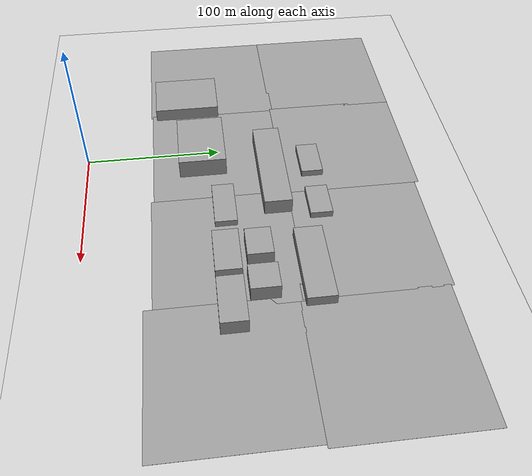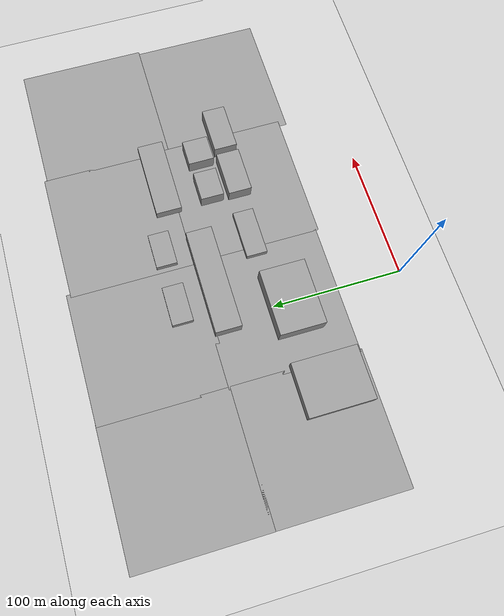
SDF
<sdf version="1.6">
 <world name="default">
  <model name="ground_plane">
   <static>1</static>
   <link name="link">
    <collision name="collision">
     <geometry><plane><normal>0 0 1</normal><size>100 100</size></plane></geometry>
     <surface><friction><ode><mu>100</mu><mu2>50</mu2></ode></friction></surface>
    </collision>
    <visual name="visual">
     <cast_shadows>0</cast_shadows>
     <geometry><plane><normal>0 0 1</normal><size>100 100</size></plane></geometry>
     <material>
      <script><uri>file://media/materials/scripts/gazebo.material</uri><name>Gazebo/Grey</name></script>
     </material>
    </visual>
   </link>
  </model>
  <model name="library_kait">
   <link name="link_0">
    <inertial>
     <mass>1</mass>
     <inertia>
      <ixx>0.166667</ixx>
      <ixy>0</ixy>
      <ixz>0</ixz>
      <iyy>0.166667</iyy>
      <iyz>0</iyz>
      <izz>0.166667</izz>
     </inertia>
    </inertial>
    <visual name="visual">
     <pose>0 0 7.5 0 -0 0</pose>
     <geometry><box><size>50 35 15</size></box></geometry>
     <material>
      <lighting>1</lighting>
      <script><uri>file://media/materials/scripts/gazebo.material</uri><name>Gazebo/Grey</name></script>
      <shader type="vertex"><normal_map>__default__</normal_map></shader>
      <ambient>0.3 0.3 0.3 1</ambient>
      <diffuse>0.7 0.7 0.7 1</diffuse>
      <specular>0.01 0.01 0.01 1</specular>
      <emissive>0 0 0 1</emissive>
     </material>
    </visual>
    <collision name="collision">
     <geometry><box><size>1 1 1</size></box></geometry>
     <surface>
      <friction>
       <ode><mu>1</mu><mu2>1</mu2><fdir1>0 0 0</fdir1><slip1>0</slip1><slip2>0</slip2></ode>
       <torsional>
        <coefficient>1</coefficient>
        <patch_radius>0</patch_radius>
        <surface_radius>0</surface_radius>
        <use_patch_radius>1</use_patch_radius>
        <ode><slip>0</slip></ode>
       </torsional>
      </friction>
      <bounce><restitution_coefficient>0</restitution_coefficient><threshold>1e+06</threshold></bounce>
      <contact>
       <collide_without_contact>0</collide_without_contact>
       <collide_without_contact_bitmask>1</collide_without_contact_bitmask>
       <collide_bitmask>1</collide_bitmask>
       <ode>
        <soft_cfm>0</soft_cfm>
        <soft_erp>0.2</soft_erp>
        <kp>1e+13</kp>
        <kd>1</kd>
        <max_vel>0.01</max_vel>
        <min_depth>0</min_depth>
       </ode>
       <bullet>
        <split_impulse>1</split_impulse>
        <split_impulse_penetration_threshold>-0.01</split_impulse_penetration_threshold>
        <soft_cfm>0</soft_cfm>
        <soft_erp>0.2</soft_erp>
        <kp>1e+13</kp>
        <kd>1</kd>
       </bullet>
      </contact>
     </surface>
    </collision>
   </link>
   <static>0</static>
   <pose>0 87 0 0 -0 0</pose>
  </model>
  <model name="vaio">
   <link name="link_0">
    <inertial>
     <mass>1</mass>
     <inertia>
      <ixx>0.166667</ixx>
      <ixy>0</ixy>
      <ixz>0</ixz>
      <iyy>0.166667</iyy>
      <iyz>0</iyz>
      <izz>0.166667</izz>
     </inertia>
    </inertial>
    <pose>-4e-06 0 0 0 -0 0</pose>
    <visual name="visual">
     <pose>0 0 5 0 -0 0</pose>
     <geometry><box><size>40 50 10</size></box></geometry>
     <material>
      <lighting>1</lighting>
      <script><uri>file://media/materials/scripts/gazebo.material</uri><name>Gazebo/Grey</name></script>
      <shader type="vertex"><normal_map>__default__</normal_map></shader>
      <ambient>0.3 0.3 0.3 1</ambient>
      <diffuse>0.7 0.7 0.7 1</diffuse>
      <specular>0.01 0.01 0.01 1</specular>
      <emissive>0 0 0 1</emissive>
     </material>
    </visual>
    <collision name="collision">
     <geometry><box><size>1 1 1</size></box></geometry>
     <surface>
      <friction>
       <ode><mu>1</mu><mu2>1</mu2><fdir1>0 0 0</fdir1><slip1>0</slip1><slip2>0</slip2></ode>
       <torsional>
        <coefficient>1</coefficient>
        <patch_radius>0</patch_radius>
        <surface_radius>0</surface_radius>
        <use_patch_radius>1</use_patch_radius>
        <ode><slip>0</slip></ode>
       </torsional>
      </friction>
      <bounce><restitution_coefficient>0</restitution_coefficient><threshold>1e+06</threshold></bounce>
      <contact>
       <collide_without_contact>0</collide_without_contact>
       <collide_without_contact_bitmask>1</collide_without_contact_bitmask>
       <collide_bitmask>1</collide_bitmask>
       <ode>
        <soft_cfm>0</soft_cfm>
        <soft_erp>0.2</soft_erp>
        <kp>1e+13</kp>
        <kd>1</kd>
        <max_vel>0.01</max_vel>
        <min_depth>0</min_depth>
       </ode>
       <bullet>
        <split_impulse>1</split_impulse>
        <split_impulse_penetration_threshold>-0.01</split_impulse_penetration_threshold>
        <soft_cfm>0</soft_cfm>
        <soft_erp>0.2</soft_erp>
        <kp>1e+13</kp>
        <kd>1</kd>
       </bullet>
      </contact>
     </surface>
    </collision>
   </link>
   <static>0</static>
   <pose>-65 78 0 0 -0 0</pose>
  </model>
  <model name="kait_C2">
   <link name="link_0">
    <inertial>
     <mass>1</mass>
     <inertia>
      <ixx>0.166667</ixx>
      <ixy>0</ixy>
      <ixz>0</ixz>
      <iyy>0.166667</iyy>
      <iyz>0</iyz>
      <izz>0.166667</izz>
     </inertia>
    </inertial>
    <pose>3.5e-05 -0.000325 0 0 -0 0</pose>
    <visual name="visual">
     <pose>0 0 6 0 -0 0</pose>
     <geometry><box><size>80 20 12</size></box></geometry>
     <material>
      <lighting>1</lighting>
      <script><uri>file://media/materials/scripts/gazebo.material</uri><name>Gazebo/Grey</name></script>
      <shader type="vertex"><normal_map>__default__</normal_map></shader>
      <ambient>0.3 0.3 0.3 1</ambient>
      <diffuse>0.7 0.7 0.7 1</diffuse>
      <specular>0.01 0.01 0.01 1</specular>
      <emissive>0 0 0 1</emissive>
     </material>
    </visual>
    <collision name="collision">
     <geometry><box><size>1 1 1</size></box></geometry>
     <surface>
      <friction>
       <ode><mu>1</mu><mu2>1</mu2><fdir1>0 0 0</fdir1><slip1>0</slip1><slip2>0</slip2></ode>
       <torsional>
        <coefficient>1</coefficient>
        <patch_radius>0</patch_radius>
        <surface_radius>0</surface_radius>
        <use_patch_radius>1</use_patch_radius>
        <ode><slip>0</slip></ode>
       </torsional>
      </friction>
      <bounce><restitution_coefficient>0</restitution_coefficient><threshold>1e+06</threshold></bounce>
      <contact>
       <collide_without_contact>0</collide_without_contact>
       <collide_without_contact_bitmask>1</collide_without_contact_bitmask>
       <collide_bitmask>1</collide_bitmask>
       <ode>
        <soft_cfm>0</soft_cfm>
        <soft_erp>0.2</soft_erp>
        <kp>1e+13</kp>
        <kd>1</kd>
        <max_vel>0.01</max_vel>
        <min_depth>0</min_depth>
       </ode>
       <bullet>
        <split_impulse>1</split_impulse>
        <split_impulse_penetration_threshold>-0.01</split_impulse_penetration_threshold>
        <soft_cfm>0</soft_cfm>
        <soft_erp>0.2</soft_erp>
        <kp>1e+13</kp>
        <kd>1</kd>
       </bullet>
      </contact>
     </surface>
    </collision>
   </link>
   <static>0</static>
   <pose>30 138 0 0 -0 0</pose>
  </model>
  <model name="kait_E6">
   <link name="link_1">
    <inertial>
     <mass>1</mass>
     <inertia>
      <ixx>0.166667</ixx>
      <ixy>0</ixy>
      <ixz>0</ixz>
      <iyy>0.166667</iyy>
      <iyz>0</iyz>
      <izz>0.166667</izz>
     </inertia>
    </inertial>
    <pose>2e-06 0 0 0 -0 0</pose>
    <visual name="visual">
     <pose>0 0 4 0 -0 0</pose>
     <geometry><box><size>60 20 8</size></box></geometry>
     <material>
      <lighting>1</lighting>
      <script><uri>file://media/materials/scripts/gazebo.material</uri><name>Gazebo/Grey</name></script>
      <shader type="vertex"><normal_map>__default__</normal_map></shader>
      <ambient>0.3 0.3 0.3 1</ambient>
      <diffuse>0.7 0.7 0.7 1</diffuse>
      <specular>0.01 0.01 0.01 1</specular>
      <emissive>0 0 0 1</emissive>
     </material>
    </visual>
    <collision name="collision">
     <geometry><box><size>1 1 1</size></box></geometry>
     <surface>
      <friction>
       <ode><mu>1</mu><mu2>1</mu2><fdir1>0 0 0</fdir1><slip1>0</slip1><slip2>0</slip2></ode>
       <torsional>
        <coefficient>1</coefficient>
        <patch_radius>0</patch_radius>
        <surface_radius>0</surface_radius>
        <use_patch_radius>1</use_patch_radius>
        <ode><slip>0</slip></ode>
       </torsional>
      </friction>
      <bounce><restitution_coefficient>0</restitution_coefficient><threshold>1e+06</threshold></bounce>
      <contact>
       <collide_without_contact>0</collide_without_contact>
       <collide_without_contact_bitmask>1</collide_without_contact_bitmask>
       <collide_bitmask>1</collide_bitmask>
       <ode>
        <soft_cfm>0</soft_cfm>
        <soft_erp>0.2</soft_erp>
        <kp>1e+13</kp>
        <kd>1</kd>
        <max_vel>0.01</max_vel>
        <min_depth>0</min_depth>
       </ode>
       <bullet>
        <split_impulse>1</split_impulse>
        <split_impulse_penetration_threshold>-0.01</split_impulse_penetration_threshold>
        <soft_cfm>0</soft_cfm>
        <soft_erp>0.2</soft_erp>
        <kp>1e+13</kp>
        <kd>1</kd>
       </bullet>
      </contact>
     </surface>
    </collision>
   </link>
   <static>0</static>
   <pose>123 155 0 0 -0 0</pose>
  </model>
  <model name="D5_kait">
   <link name="link_4">
    <inertial>
     <mass>1</mass>
     <inertia>
      <ixx>0.166667</ixx>
      <ixy>0</ixy>
      <ixz>0</ixz>
      <iyy>0.166667</iyy>
      <iyz>0</iyz>
      <izz>0.166667</izz>
     </inertia>
    </inertial>
    <pose>-1.1e-05 -1.1e-05 0 0 -0 0</pose>
    <visual name="visual">
     <pose>0 0 2.5 0 -0 0</pose>
     <geometry><box><size>37 16 5</size></box></geometry>
     <material>
      <lighting>1</lighting>
      <script><uri>file://media/materials/scripts/gazebo.material</uri><name>Gazebo/Grey</name></script>
      <shader type="vertex"><normal_map>__default__</normal_map></shader>
      <ambient>0.3 0.3 0.3 1</ambient>
      <diffuse>0.7 0.7 0.7 1</diffuse>
      <specular>0.01 0.01 0.01 1</specular>
      <emissive>0 0 0 1</emissive>
     </material>
    </visual>
    <collision name="collision">
     <geometry><box><size>1 1 1</size></box></geometry>
     <surface>
      <friction>
       <ode><mu>1</mu><mu2>1</mu2><fdir1>0 0 0</fdir1><slip1>0</slip1><slip2>0</slip2></ode>
       <torsional>
        <coefficient>1</coefficient>
        <patch_radius>0</patch_radius>
        <surface_radius>0</surface_radius>
        <use_patch_radius>1</use_patch_radius>
        <ode><slip>0</slip></ode>
       </torsional>
      </friction>
      <bounce><restitution_coefficient>0</restitution_coefficient><threshold>1e+06</threshold></bounce>
      <contact>
       <collide_without_contact>0</collide_without_contact>
       <collide_without_contact_bitmask>1</collide_without_contact_bitmask>
       <collide_bitmask>1</collide_bitmask>
       <ode>
        <soft_cfm>0</soft_cfm>
        <soft_erp>0.2</soft_erp>
        <kp>1e+13</kp>
        <kd>1</kd>
        <max_vel>0.01</max_vel>
        <min_depth>0</min_depth>
       </ode>
       <bullet>
        <split_impulse>1</split_impulse>
        <split_impulse_penetration_threshold>-0.01</split_impulse_penetration_threshold>
        <soft_cfm>0</soft_cfm>
        <soft_erp>0.2</soft_erp>
        <kp>1e+13</kp>
        <kd>1</kd>
       </bullet>
      </contact>
     </surface>
    </collision>
   </link>
   <static>0</static>
   <pose>60 100 0 0 -0 0</pose>
  </model>
  <model name="E3_kait">
   <link name="link_5">
    <inertial>
     <mass>1</mass>
     <inertia>
      <ixx>0.166667</ixx>
      <ixy>0</ixy>
      <ixz>0</ixz>
      <iyy>0.166667</iyy>
      <iyz>0</iyz>
      <izz>0.166667</izz>
     </inertia>
    </inertial>
    <pose>-3e-06 -2e-06 0 0 -0 0</pose>
    <visual name="visual">
     <pose>0 0 6 0 -0 0</pose>
     <geometry><box><size>23 18 12</size></box></geometry>
     <material>
      <lighting>1</lighting>
      <script><uri>file://media/materials/scripts/gazebo.material</uri><name>Gazebo/Grey</name></script>
      <shader type="vertex"><normal_map>__default__</normal_map></shader>
      <ambient>0.3 0.3 0.3 1</ambient>
      <diffuse>0.7 0.7 0.7 1</diffuse>
      <specular>0.01 0.01 0.01 1</specular>
      <emissive>0 0 0 1</emissive>
     </material>
    </visual>
    <collision name="collision">
     <geometry><box><size>1 1 1</size></box></geometry>
     <surface>
      <friction>
       <ode><mu>1</mu><mu2>1</mu2><fdir1>0 0 0</fdir1><slip1>0</slip1><slip2>0</slip2></ode>
       <torsional>
        <coefficient>1</coefficient>
        <patch_radius>0</patch_radius>
        <surface_radius>0</surface_radius>
        <use_patch_radius>1</use_patch_radius>
        <ode><slip>0</slip></ode>
       </torsional>
      </friction>
      <bounce><restitution_coefficient>0</restitution_coefficient><threshold>1e+06</threshold></bounce>
      <contact>
       <collide_without_contact>0</collide_without_contact>
       <collide_without_contact_bitmask>1</collide_without_contact_bitmask>
       <collide_bitmask>1</collide_bitmask>
       <ode>
        <soft_cfm>0</soft_cfm>
        <soft_erp>0.2</soft_erp>
        <kp>1e+13</kp>
        <kd>1</kd>
        <max_vel>0.01</max_vel>
        <min_depth>0</min_depth>
       </ode>
       <bullet>
        <split_impulse>1</split_impulse>
        <split_impulse_penetration_threshold>-0.01</split_impulse_penetration_threshold>
        <soft_cfm>0</soft_cfm>
        <soft_erp>0.2</soft_erp>
        <kp>1e+13</kp>
        <kd>1</kd>
       </bullet>
      </contact>
     </surface>
    </collision>
   </link>
   <static>0</static>
   <pose>105 120 0 0 -0 0</pose>
  </model>
  <model name="E1_kait">
   <link name="link_6">
    <inertial>
     <mass>1</mass>
     <inertia>
      <ixx>0.166667</ixx>
      <ixy>0</ixy>
      <ixz>0</ixz>
      <iyy>0.166667</iyy>
      <iyz>0</iyz>
      <izz>0.166667</izz>
     </inertia>
    </inertial>
    <pose>0.000261 -1.2e-05 0 0 -0 0</pose>
    <visual name="visual">
     <pose>0 0 6 0 -0 0</pose>
     <geometry><box><size>35 18 12</size></box></geometry>
     <material>
      <lighting>1</lighting>
      <script><uri>file://media/materials/scripts/gazebo.material</uri><name>Gazebo/Grey</name></script>
      <shader type="vertex"><normal_map>__default__</normal_map></shader>
      <ambient>0.3 0.3 0.3 1</ambient>
      <diffuse>0.7 0.7 0.7 1</diffuse>
      <specular>0.01 0.01 0.01 1</specular>
      <emissive>0 0 0 1</emissive>
     </material>
    </visual>
    <collision name="collision">
     <geometry><box><size>1 1 1</size></box></geometry>
     <surface>
      <friction>
       <ode><mu>1</mu><mu2>1</mu2><fdir1>0 0 0</fdir1><slip1>0</slip1><slip2>0</slip2></ode>
       <torsional>
        <coefficient>1</coefficient>
        <patch_radius>0</patch_radius>
        <surface_radius>0</surface_radius>
        <use_patch_radius>1</use_patch_radius>
        <ode><slip>0</slip></ode>
       </torsional>
      </friction>
      <bounce><restitution_coefficient>0</restitution_coefficient><threshold>1e+06</threshold></bounce>
      <contact>
       <collide_without_contact>0</collide_without_contact>
       <collide_without_contact_bitmask>1</collide_without_contact_bitmask>
       <collide_bitmask>1</collide_bitmask>
       <ode>
        <soft_cfm>0</soft_cfm>
        <soft_erp>0.2</soft_erp>
        <kp>1e+13</kp>
        <kd>1</kd>
        <max_vel>0.01</max_vel>
        <min_depth>0</min_depth>
       </ode>
       <bullet>
        <split_impulse>1</split_impulse>
        <split_impulse_penetration_threshold>-0.01</split_impulse_penetration_threshold>
        <soft_cfm>0</soft_cfm>
        <soft_erp>0.2</soft_erp>
        <kp>1e+13</kp>
        <kd>1</kd>
       </bullet>
      </contact>
     </surface>
    </collision>
   </link>
   <static>0</static>
   <pose>110 98 0 0 -0 0</pose>
  </model>
  <model name="E4_kait">
   <link name="link_7">
    <inertial>
     <mass>1</mass>
     <inertia>
      <ixx>0.166667</ixx>
      <ixy>0</ixy>
      <ixz>0</ixz>
      <iyy>0.166667</iyy>
      <iyz>0</iyz>
      <izz>0.166667</izz>
     </inertia>
    </inertial>
    <pose>-0.000287 -8.2e-05 0 0 -0 0</pose>
    <visual name="visual">
     <pose>0 0 6 0 -0 0</pose>
     <geometry><box><size>20 20 12</size></box></geometry>
     <material>
      <lighting>1</lighting>
      <script><uri>file://media/materials/scripts/gazebo.material</uri><name>Gazebo/Grey</name></script>
      <shader type="vertex"><normal_map>__default__</normal_map></shader>
      <ambient>0.3 0.3 0.3 1</ambient>
      <diffuse>0.7 0.7 0.7 1</diffuse>
      <specular>0.01 0.01 0.01 1</specular>
      <emissive>0 0 0 1</emissive>
     </material>
    </visual>
    <collision name="collision">
     <geometry><box><size>1 1 1</size></box></geometry>
     <surface>
      <friction>
       <ode><mu>1</mu><mu2>1</mu2><fdir1>0 0 0</fdir1><slip1>0</slip1><slip2>0</slip2></ode>
       <torsional>
        <coefficient>1</coefficient>
        <patch_radius>0</patch_radius>
        <surface_radius>0</surface_radius>
        <use_patch_radius>1</use_patch_radius>
        <ode><slip>0</slip></ode>
       </torsional>
      </friction>
      <bounce><restitution_coefficient>0</restitution_coefficient><threshold>1e+06</threshold></bounce>
      <contact>
       <collide_without_contact>0</collide_without_contact>
       <collide_without_contact_bitmask>1</collide_without_contact_bitmask>
       <collide_bitmask>1</collide_bitmask>
       <ode>
        <soft_cfm>0</soft_cfm>
        <soft_erp>0.2</soft_erp>
        <kp>1e+13</kp>
        <kd>1</kd>
        <max_vel>0.01</max_vel>
        <min_depth>0</min_depth>
       </ode>
       <bullet>
        <split_impulse>1</split_impulse>
        <split_impulse_penetration_threshold>-0.01</split_impulse_penetration_threshold>
        <soft_cfm>0</soft_cfm>
        <soft_erp>0.2</soft_erp>
        <kp>1e+13</kp>
        <kd>1</kd>
       </bullet>
      </contact>
     </surface>
    </collision>
   </link>
   <static>0</static>
   <pose>135 120 0.5 0 -0 0</pose>
  </model>
  <model name="E2_kait">
   <link name="link_0">
    <inertial>
     <mass>1</mass>
     <inertia>
      <ixx>0.166667</ixx>
      <ixy>0</ixy>
      <ixz>0</ixz>
      <iyy>0.166667</iyy>
      <iyz>0</iyz>
      <izz>0.166667</izz>
     </inertia>
    </inertial>
    <pose>3e-06 -2e-06 0 0 -0 0</pose>
    <visual name="visual">
     <pose>0 0 6 0 -0 0</pose>
     <geometry><box><size>36 18 12</size></box></geometry>
     <material>
      <lighting>1</lighting>
      <script><uri>file://media/materials/scripts/gazebo.material</uri><name>Gazebo/Grey</name></script>
      <shader type="vertex"><normal_map>__default__</normal_map></shader>
      <ambient>0.3 0.3 0.3 1</ambient>
      <diffuse>0.7 0.7 0.7 1</diffuse>
      <specular>0.01 0.01 0.01 1</specular>
      <emissive>0 0 0 1</emissive>
     </material>
    </visual>
    <collision name="collision">
     <geometry><box><size>1 1 1</size></box></geometry>
     <surface>
      <friction>
       <ode><mu>1</mu><mu2>1</mu2><fdir1>0 0 0</fdir1><slip1>0</slip1><slip2>0</slip2></ode>
       <torsional>
        <coefficient>1</coefficient>
        <patch_radius>0</patch_radius>
        <surface_radius>0</surface_radius>
        <use_patch_radius>1</use_patch_radius>
        <ode><slip>0</slip></ode>
       </torsional>
      </friction>
      <bounce><restitution_coefficient>0</restitution_coefficient><threshold>1e+06</threshold></bounce>
      <contact>
       <collide_without_contact>0</collide_without_contact>
       <collide_without_contact_bitmask>1</collide_without_contact_bitmask>
       <collide_bitmask>1</collide_bitmask>
       <ode>
        <soft_cfm>0</soft_cfm>
        <soft_erp>0.2</soft_erp>
        <kp>1e+13</kp>
        <kd>1</kd>
        <max_vel>0.01</max_vel>
        <min_depth>0</min_depth>
       </ode>
       <bullet>
        <split_impulse>1</split_impulse>
        <split_impulse_penetration_threshold>-0.01</split_impulse_penetration_threshold>
        <soft_cfm>0</soft_cfm>
        <soft_erp>0.2</soft_erp>
        <kp>1e+13</kp>
        <kd>1</kd>
       </bullet>
      </contact>
     </surface>
    </collision>
   </link>
   <static>0</static>
   <pose>150 98 0 0 -0 0</pose>
  </model>
  <model name="C3_kait">
   <link name="link_2">
    <inertial>
     <mass>1</mass>
     <inertia>
      <ixx>0.166667</ixx>
      <ixy>0</ixy>
      <ixz>0</ixz>
      <iyy>0.166667</iyy>
      <iyz>0</iyz>
      <izz>0.166667</izz>
     </inertia>
    </inertial>
    <pose>2e-06 5e-06 0 0 -0 0</pose>
    <visual name="visual">
     <pose>0 0 2.5 0 -0 0</pose>
     <geometry><box><size>27 16 5</size></box></geometry>
     <material>
      <lighting>1</lighting>
      <script><uri>file://media/materials/scripts/gazebo.material</uri><name>Gazebo/Grey</name></script>
      <shader type="vertex"><normal_map>__default__</normal_map></shader>
      <ambient>0.3 0.3 0.3 1</ambient>
      <diffuse>0.7 0.7 0.7 1</diffuse>
      <specular>0.01 0.01 0.01 1</specular>
      <emissive>0 0 0 1</emissive>
     </material>
    </visual>
    <collision name="collision">
     <geometry><box><size>1 1 1</size></box></geometry>
     <surface>
      <friction>
       <ode><mu>1</mu><mu2>1</mu2><fdir1>0 0 0</fdir1><slip1>0</slip1><slip2>0</slip2></ode>
       <torsional>
        <coefficient>1</coefficient>
        <patch_radius>0</patch_radius>
        <surface_radius>0</surface_radius>
        <use_patch_radius>1</use_patch_radius>
        <ode><slip>0</slip></ode>
       </torsional>
      </friction>
      <bounce><restitution_coefficient>0</restitution_coefficient><threshold>1e+06</threshold></bounce>
      <contact>
       <collide_without_contact>0</collide_without_contact>
       <collide_without_contact_bitmask>1</collide_without_contact_bitmask>
       <collide_bitmask>1</collide_bitmask>
       <ode>
        <soft_cfm>0</soft_cfm>
        <soft_erp>0.2</soft_erp>
        <kp>1e+13</kp>
        <kd>1</kd>
        <max_vel>0.01</max_vel>
        <min_depth>0</min_depth>
       </ode>
       <bullet>
        <split_impulse>1</split_impulse>
        <split_impulse_penetration_threshold>-0.01</split_impulse_penetration_threshold>
        <soft_cfm>0</soft_cfm>
        <soft_erp>0.2</soft_erp>
        <kp>1e+13</kp>
        <kd>1</kd>
       </bullet>
      </contact>
     </surface>
    </collision>
   </link>
   <static>0</static>
   <pose>64.8552 167.908 0.499991 0 -0 0</pose>
  </model>
  <model name="C4_kait">
   <link name="link_1">
    <inertial>
     <mass>1</mass>
     <inertia>
      <ixx>0.166667</ixx>
      <ixy>0</ixy>
      <ixz>0</ixz>
      <iyy>0.166667</iyy>
      <iyz>0</iyz>
      <izz>0.166667</izz>
     </inertia>
    </inertial>
    <visual name="visual">
     <pose>0 0 2.5 0 -0 0</pose>
     <geometry><box><size>30 16 5</size></box></geometry>
     <material>
      <lighting>1</lighting>
      <script><uri>file://media/materials/scripts/gazebo.material</uri><name>Gazebo/Grey</name></script>
      <shader type="vertex"><normal_map>__default__</normal_map></shader>
      <ambient>0.3 0.3 0.3 1</ambient>
      <diffuse>0.7 0.7 0.7 1</diffuse>
      <specular>0.01 0.01 0.01 1</specular>
      <emissive>0 0 0 1</emissive>
     </material>
    </visual>
    <collision name="collision">
     <geometry><box><size>1 1 1</size></box></geometry>
     <surface>
      <friction>
       <ode><mu>1</mu><mu2>1</mu2><fdir1>0 0 0</fdir1><slip1>0</slip1><slip2>0</slip2></ode>
       <torsional>
        <coefficient>1</coefficient>
        <patch_radius>0</patch_radius>
        <surface_radius>0</surface_radius>
        <use_patch_radius>1</use_patch_radius>
        <ode><slip>0</slip></ode>
       </torsional>
      </friction>
      <bounce><restitution_coefficient>0</restitution_coefficient><threshold>1e+06</threshold></bounce>
      <contact>
       <collide_without_contact>0</collide_without_contact>
       <collide_without_contact_bitmask>1</collide_without_contact_bitmask>
       <collide_bitmask>1</collide_bitmask>
       <ode>
        <soft_cfm>0</soft_cfm>
        <soft_erp>0.2</soft_erp>
        <kp>1e+13</kp>
        <kd>1</kd>
        <max_vel>0.01</max_vel>
        <min_depth>0</min_depth>
       </ode>
       <bullet>
        <split_impulse>1</split_impulse>
        <split_impulse_penetration_threshold>-0.01</split_impulse_penetration_threshold>
        <soft_cfm>0</soft_cfm>
        <soft_erp>0.2</soft_erp>
        <kp>1e+13</kp>
        <kd>1</kd>
       </bullet>
      </contact>
     </surface>
    </collision>
   </link>
   <static>0</static>
   <pose>20.0488 168.228 0.499991 0 -0 0</pose>
  </model>
  <model name="ground_plane_1">
   <static>1</static>
   <link name="link">
    <collision name="collision">
     <geometry><plane><normal>0 0 1</normal><size>100 100</size></plane></geometry>
     <surface><friction><ode><mu>100</mu><mu2>50</mu2></ode></friction></surface>
    </collision>
    <visual name="visual">
     <cast_shadows>0</cast_shadows>
     <geometry><plane><normal>0 0 1</normal><size>100 100</size></plane></geometry>
     <material>
      <script><uri>file://media/materials/scripts/gazebo.material</uri><name>Gazebo/Grey</name></script>
     </material>
    </visual>
   </link>
   <pose>99.2052 97.5 0 0 -0 0</pose>
  </model>
  <model name="ground_plane_2">
   <static>1</static>
   <link name="link">
    <collision name="collision">
     <geometry><plane><normal>0 0 1</normal><size>100 100</size></plane></geometry>
     <surface><friction><ode><mu>100</mu><mu2>50</mu2></ode></friction></surface>
    </collision>
    <visual name="visual">
     <cast_shadows>0</cast_shadows>
     <geometry><plane><normal>0 0 1</normal><size>100 100</size></plane></geometry>
     <material>
      <script><uri>file://media/materials/scripts/gazebo.material</uri><name>Gazebo/Grey</name></script>
     </material>
    </visual>
   </link>
   <pose>0.082864 99.4362 0 0 -0 0</pose>
  </model>
  <model name="ground_plane_4">
   <static>1</static>
   <link name="link">
    <collision name="collision">
     <geometry><plane><normal>0 0 1</normal><size>100 100</size></plane></geometry>
     <surface><friction><ode><mu>100</mu><mu2>50</mu2></ode></friction></surface>
    </collision>
    <visual name="visual">
     <cast_shadows>0</cast_shadows>
     <geometry><plane><normal>0 0 1</normal><size>100 100</size></plane></geometry>
     <material>
      <script><uri>file://media/materials/scripts/gazebo.material</uri><name>Gazebo/Grey</name></script>
     </material>
    </visual>
   </link>
   <pose>-97.594 98.2742 0 0 -0 0</pose>
  </model>
  <model name="ground_plane_5">
   <static>1</static>
   <link name="link">
    <collision name="collision">
     <geometry><plane><normal>0 0 1</normal><size>100 100</size></plane></geometry>
     <surface><friction><ode><mu>100</mu><mu2>50</mu2></ode></friction></surface>
    </collision>
    <visual name="visual">
     <cast_shadows>0</cast_shadows>
     <geometry><plane><normal>0 0 1</normal><size>100 100</size></plane></geometry>
     <material>
      <script><uri>file://media/materials/scripts/gazebo.material</uri><name>Gazebo/Grey</name></script>
     </material>
    </visual>
   </link>
   <pose>-97.7291 196.503 0 0 -0 0</pose>
  </model>
  <model name="ground_plane_6">
   <static>1</static>
   <link name="link">
    <collision name="collision">
     <geometry><plane><normal>0 0 1</normal><size>100 100</size></plane></geometry>
     <surface><friction><ode><mu>100</mu><mu2>50</mu2></ode></friction></surface>
    </collision>
    <visual name="visual">
     <cast_shadows>0</cast_shadows>
     <geometry><plane><normal>0 0 1</normal><size>100 100</size></plane></geometry>
     <material>
      <script><uri>file://media/materials/scripts/gazebo.material</uri><name>Gazebo/Grey</name></script>
     </material>
    </visual>
   </link>
   <pose>0.635562 196.352 0 0 -0 0</pose>
  </model>
  <model name="ground_plane_7">
   <static>1</static>
   <link name="link">
    <collision name="collision">
     <geometry><plane><normal>0 0 1</normal><size>100 100</size></plane></geometry>
     <surface><friction><ode><mu>100</mu><mu2>50</mu2></ode></friction></surface>
    </collision>
    <visual name="visual">
     <cast_shadows>0</cast_shadows>
     <geometry><plane><normal>0 0 1</normal><size>100 100</size></plane></geometry>
     <material>
      <script><uri>file://media/materials/scripts/gazebo.material</uri><name>Gazebo/Grey</name></script>
     </material>
    </visual>
   </link>
   <pose>98.1058 193.266 0 0 -0 0</pose>
  </model>
  <model name="ground_plane_8">
   <static>1</static>
   <link name="link">
    <collision name="collision">
     <geometry><plane><normal>0 0 1</normal><size>100 100</size></plane></geometry>
     <surface><friction><ode><mu>100</mu><mu2>50</mu2></ode></friction></surface>
    </collision>
    <visual name="visual">
     <cast_shadows>0</cast_shadows>
     <geometry><plane><normal>0 0 1</normal><size>100 100</size></plane></geometry>
     <material>
      <script><uri>file://media/materials/scripts/gazebo.material</uri><name>Gazebo/Grey</name></script>
     </material>
    </visual>
   </link>
   <pose>196.955 191.156 0 0 -0 0</pose>
  </model>
  <model name="ground_plane_9">
   <static>1</static>
   <link name="link">
    <collision name="collision">
     <geometry><plane><normal>0 0 1</normal><size>100 100</size></plane></geometry>
     <surface><friction><ode><mu>100</mu><mu2>50</mu2></ode></friction></surface>
    </collision>
    <visual name="visual">
     <cast_shadows>0</cast_shadows>
     <geometry><plane><normal>0 0 1</normal><size>100 100</size></plane></geometry>
     <material>
      <script><uri>file://media/materials/scripts/gazebo.material</uri><name>Gazebo/Grey</name></script>
     </material>
    </visual>
   </link>
   <pose>194.75 91.8063 0 0 -0 0</pose>
  </model>
 </world>
</sdf>
